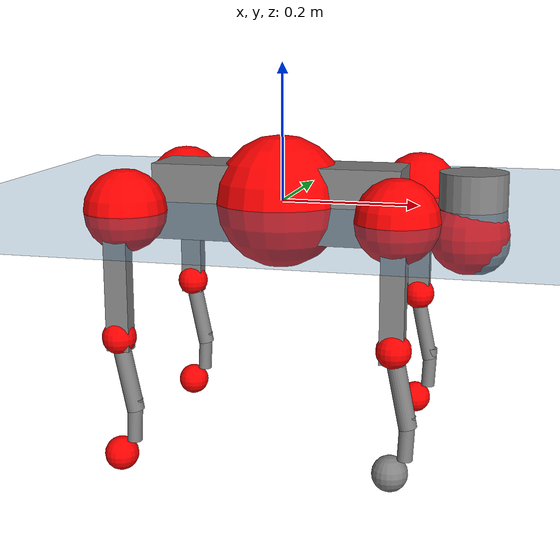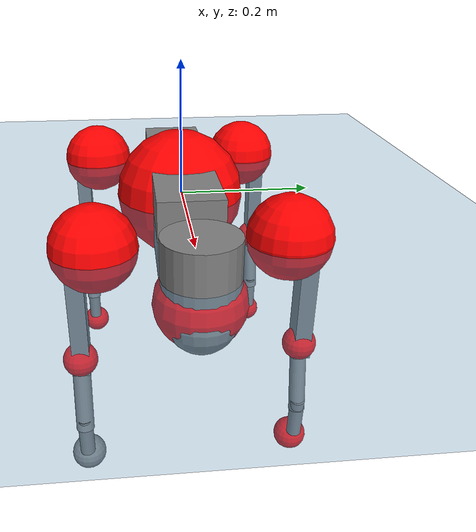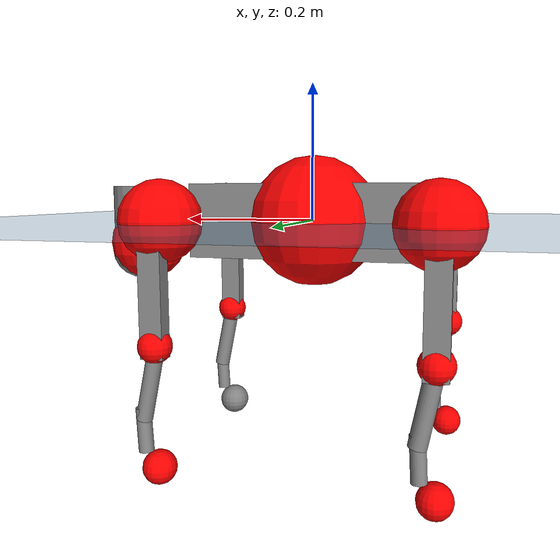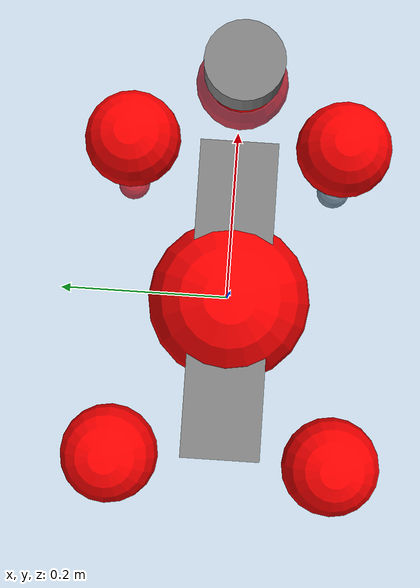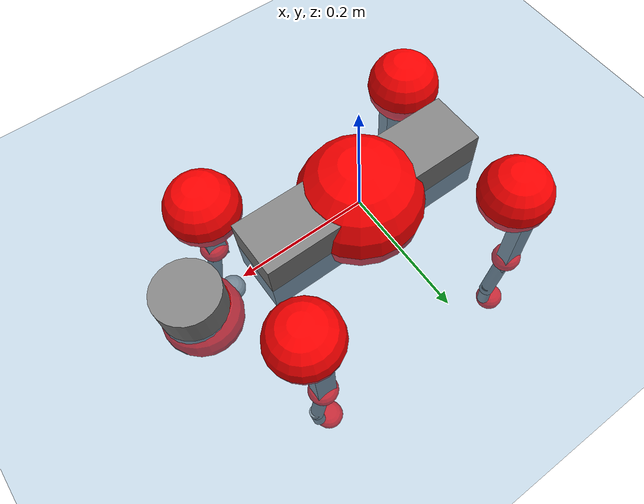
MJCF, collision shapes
<mujoco model="go2">
  <compiler angle="radian" assetdir="assets" balanceinertia="true" inertiafromgeom="false"/>

  <option timestep="0.005" density="1.2" viscosity="2e-05"/>

  <size nkey="1"/>

  <visual>
    <quality shadowsize="8192"/>
    <map shadowclip="0.5"/>
  </visual>

  <default>
    <default class="/">
      <geom contype="0" conaffinity="0" group="1" solref="-1000 -80"/>
      <site size="0.01 0.005 0.005" group="5"/>
      <general forcelimited="true" biastype="affine" gainprm="20" biasprm="0 -20 -0.5"/>
      <default class="go2">
        <joint armature="0.01" damping="0.01" frictionloss="0.2"/>
        <geom condim="1" margin="0.001"/>
        <default class="visual">
          <geom type="mesh" group="2"/>
        </default>
        <default class="collision">
          <geom group="3"/>
          <default class="foot">
            <geom size="0.022 0 0" condim="6" priority="1" friction="0.8 0.02 0.01" solimp="0.015 1 0.022"/>
          </default>
        </default>
        <default class="reward_collision_sphere">
          <geom group="5" rgba="1 0 0 1"/>
        </default>
      </default>
    </default>
  </default>

  <asset>
    <texture type="skybox" colorspace="auto" name="//unnamed_texture_0" builtin="gradient" rgb1="0.95 0.95 0.95" rgb2="0.95 0.95 0.95" width="100" height="600"/>
    <texture type="2d" colorspace="auto" name="texplane" builtin="checker" rgb1="0.345 0.575 0.748" rgb2="0.345 0.575 0.748" markrgb="1 1 1" width="512" height="512"/>
    <material name="MatPlane" class="/" texture="texplane" texuniform="true" texrepeat="2 2" specular="0.9"/>
    <material name="metal" class="/" rgba="0.9 0.95 0.95 1"/>
    <material name="black" class="/" rgba="0 0 0 1"/>
    <material name="white" class="/"/>
    <material name="gray" class="/" rgba="0.671705 0.692426 0.77427 1"/>
    <mesh name="base_0" class="/" file="base_0.obj"/>
    <mesh name="base_1" class="/" file="base_1.obj"/>
    <mesh name="base_2" class="/" file="base_2.obj"/>
    <mesh name="base_3" class="/" file="base_3.obj"/>
    <mesh name="base_4" class="/" file="base_4.obj"/>
    <mesh name="hip_0" class="/" file="hip_0.obj"/>
    <mesh name="hip_1" class="/" file="hip_1.obj"/>
    <mesh name="thigh_0" class="/" file="thigh_0.obj"/>
    <mesh name="thigh_1" class="/" file="thigh_1.obj"/>
    <mesh name="thigh_mirror_0" class="/" file="thigh_mirror_0.obj"/>
    <mesh name="thigh_mirror_1" class="/" file="thigh_mirror_1.obj"/>
    <mesh name="calf_0" class="/" file="calf_0.obj"/>
    <mesh name="calf_1" class="/" file="calf_1.obj"/>
    <mesh name="calf_mirror_0" class="/" file="calf_mirror_0.obj"/>
    <mesh name="calf_mirror_1" class="/" file="calf_mirror_1.obj"/>
    <mesh name="foot" class="/" file="foot.obj"/>
  </asset>

  <worldbody>
    <geom name="floor" class="/" size="100 100 0.125" type="plane" group="0" material="MatPlane"/>
    <light name="toplight_shadow" class="/" pos="0 0 5" dir="0.0990148 0.0990148 -0.990148" type="directional" ambient="0.04 0.04 0.04" diffuse="0.55 0.55 0.55" specular="0.12 0.12 0.12"/>
    <light name="toplight_fill" class="/" pos="0 0 5" dir="0.0990148 0.0990148 -0.990148" type="directional" castshadow="false" ambient="0.04 0.04 0.04" diffuse="0.3 0.3 0.3" specular="0.08 0.08 0.08"/>
    <body name="trunk" childclass="go2" pos="-0.00263948 -0.00234987 -0.000179138" quat="0.999999 -3.20818e-05 0.000195238 0.00134387">
      <inertial pos="0.0180758 0.000120283 -0.00493278" quat="-0.000297609 0.71373 -0.00188154 0.700419" mass="6.25523" diaginertia="0.0977024 0.170914 0.00895259"/>
      <joint name="//unnamed_joint_0" type="free" armature="0" damping="0" frictionloss="0"/>
      <geom name="//unnamed_geom_1" class="visual" material="black" mesh="base_0"/>
      <geom name="//unnamed_geom_2" class="visual" material="black" mesh="base_1"/>
      <geom name="//unnamed_geom_3" class="visual" material="black" mesh="base_2"/>
      <geom name="//unnamed_geom_4" class="visual" material="white" mesh="base_3"/>
      <geom name="//unnamed_geom_5" class="visual" material="gray" mesh="base_4"/>
      <geom name="trunk_1" class="collision" size="0.18277 0.0454252 0.0553847" type="box"/>
      <geom name="trunk_2" class="collision" size="0.0485831 0.0437248" pos="0.279765 0 0.00813553" type="cylinder"/>
      <geom name="trunk_3" class="collision" size="0.0456681" pos="0.287618 0 -0.0488132"/>
      <geom name="//unnamed_geom_9" class="reward_collision_sphere" size="0.0971662"/>
      <geom name="//unnamed_geom_10" class="reward_collision_sphere" size="0.0582997" pos="0.274857 0 -0.0366099"/>
      <site name="imu" pos="-0.0223805 -0.000312568 0.038273" size="0.00971662"/>
      <camera name="track" pos="0 -2.2396 0" quat="0.707107 0.707107 0 0" mode="trackcom"/>
      <camera name="ego_camera" pos="0.306269 0 0.0366099" quat="-0.5 -0.5 0.5 0.5"/>
      <body name="FL_hip" pos="0.187641 0.0503017 0.00304652" quat="0.999999 5.29462e-05 0.00120641 -0.000143215">
        <inertial pos="-0.00776556 0.00133824 -0.00155773" quat="0.497856 0.499203 0.505369 0.497532" mass="0.650396" diaginertia="0.000844404 0.00104888 0.000180185"/>
        <joint name="FL_hip_joint" pos="0 0 0" axis="0.999982 0.000176272 -0.00606871" stiffness="0.00197613" range="-1.04949 0.992387" armature="0.010981" damping="0" frictionloss="0.198779"/>
        <geom name="//unnamed_geom_11" class="visual" material="metal" mesh="hip_0"/>
        <geom name="//unnamed_geom_12" class="visual" material="gray" mesh="hip_1"/>
        <geom name="//unnamed_geom_13" class="collision" size="0.0446964 0.0194332" pos="0 0.089584 0" quat="0.707107 0.707107 0 0" type="cylinder"/>
        <geom name="//unnamed_geom_14" class="reward_collision_sphere" size="0.0582997" pos="0 0.078386 0"/>
        <body name="FL_thigh" pos="-0.00039834 0.106246 0.00288561" quat="1 -8.14504e-05 5.07232e-05 0.000258149">
          <inertial pos="-0.00107902 -0.0254806 -0.0237966" quat="0.829608 0.0847156 -0.0199669 0.55152" mass="1.06773" diaginertia="0.00544371 0.0101737 0.000312475"/>
          <joint name="FL_thigh_joint" pos="0 0 0" axis="-0.00250097 0.999944 -0.0103084" stiffness="0.0108088" range="-1.62172 3.545" armature="0.0110134" damping="0" frictionloss="0.204558"/>
          <geom name="//unnamed_geom_15" class="visual" material="metal" mesh="thigh_0"/>
          <geom name="//unnamed_geom_16" class="visual" material="gray" mesh="thigh_1"/>
          <geom name="//unnamed_geom_17" class="collision" size="0.103482 0.0119029 0.0165182" pos="0 0 -0.0866434" quat="0.707107 0 0.707107 0" type="box"/>
          <body name="FL_calf" pos="0.000228519 -0.00119386 -0.173436" quat="1 -0.000643066 0.000116783 -0.000714103">
            <inertial pos="0.00792161 0.000948633 -0.117392" quat="0.716768 -0.00837266 -0.000104987 0.697261" mass="0.219209" diaginertia="0.0013631 0.00261137 1.84047e-05"/>
            <joint name="FL_calf_joint" pos="0 0 0" axis="-0.00347145 0.999994 -0.000615142" range="-2.70931 -0.892046" armature="0.00893745" damping="0.000911394" frictionloss="0.203226"/>
            <geom name="//unnamed_geom_18" class="visual" material="gray" mesh="calf_0"/>
            <geom name="//unnamed_geom_19" class="visual" material="black" mesh="calf_1"/>
            <geom name="FL_calf0" class="collision" size="0.0116599 0.0582997" pos="0.00785306 0 -0.0488132" quat="0.994493 0 -0.104807 0" type="cylinder"/>
            <geom name="//unnamed_geom_21" class="collision" size="0.0106883 0.031579" pos="0.0196326 0 -0.120406" quat="0.999688 0 0.0249974 0" type="cylinder"/>
            <geom name="//unnamed_geom_22" class="visual" pos="0 0 -0.173287" quat="1 0 0 0" material="black" mesh="foot"/>
            <geom name="FL_foot" class="foot" size="0.017408" pos="-0.00196326 0 -0.173287"/>
            <geom name="//unnamed_geom_24" class="reward_collision_sphere" size="0.0242915"/>
            <geom name="//unnamed_geom_25" class="reward_collision_sphere" size="0.0242915" pos="-0.00196326 0 -0.173287"/>
            <site name="FL_foot" class="foot" pos="-0.00196326 0 -0.173287" size="0.00971662"/>
          </body>
        </body>
      </body>
      <body name="FR_hip" pos="0.191259 -0.0492519 0.000375653" quat="1 1.495e-05 1.07696e-05 -3.66826e-07">
        <inertial pos="-0.00242831 -0.00296957 -0.000227235" quat="0.49858 0.504673 0.498476 0.498241" mass="0.656665" diaginertia="0.000839396 0.00109397 0.000171628"/>
        <joint name="FR_hip_joint" pos="0 0 0" axis="1 8.17995e-05 9.2845e-05" range="-1.01698 1.04535" armature="0.0085124" damping="0.0142996" frictionloss="0.219736"/>
        <geom name="//unnamed_geom_26" class="visual" pos="0 2.66789e-09 1.14431e-07" quat="4.63268e-05 1 0 0" material="metal" mesh="hip_0"/>
        <geom name="//unnamed_geom_27" class="visual" pos="0 4.32497e-09 -2.83033e-07" quat="4.63268e-05 1 0 0" material="gray" mesh="hip_1"/>
        <geom name="//unnamed_geom_28" class="collision" size="0.0446964 0.0194332" pos="0 -0.089584 0" quat="0.707107 0.707107 0 0" type="cylinder"/>
        <geom name="//unnamed_geom_29" class="reward_collision_sphere" size="0.0582997" pos="0 -0.078386 0"/>
        <body name="FR_thigh" pos="0.000750399 -0.105599 0.00317222" quat="0.999999 -0.00132693 0.000155368 -0.000484569">
          <inertial pos="-0.00590426 0.0225806 -0.0258765" quat="0.552355 -0.022035 0.0808466 0.829387" mass="1.02606" diaginertia="0.00543593 0.0102209 0.000302887"/>
          <joint name="FR_thigh_joint" pos="0 0 0" axis="-0.00407203 -0.99999 0.00161442" stiffness="0.00165399" range="-3.47865 1.56444" armature="0.00972897" damping="0.0187481" frictionloss="0.199342"/>
          <geom name="//unnamed_geom_30" class="visual" material="metal" mesh="thigh_mirror_0"/>
          <geom name="//unnamed_geom_31" class="visual" material="gray" mesh="thigh_mirror_1"/>
          <geom name="//unnamed_geom_32" class="collision" size="0.103482 0.0119029 0.0165182" pos="0 0 -0.0866434" quat="0.707107 0 0.707107 0" type="box"/>
          <body name="FR_calf" pos="0.00193349 -0.00154472 -0.172103" quat="1 -0.00010068 7.17253e-05 -0.000136391">
            <inertial pos="0.00748895 0.00102993 -0.114691" quat="0.70514 -0.00798007 -0.000171664 0.709023" mass="0.22668" diaginertia="0.00145346 0.00258375 1.96758e-05"/>
            <joint name="FR_calf_joint" pos="0 0 0" axis="-0.000579402 -0.999945 0.0104851" range="0.834835 2.72409" armature="0.00976668" damping="0.0177224" frictionloss="0.185603"/>
            <geom name="//unnamed_geom_33" class="visual" material="gray" mesh="calf_mirror_0"/>
            <geom name="//unnamed_geom_34" class="visual" material="black" mesh="calf_mirror_1"/>
            <geom name="FR_calf0" class="collision" size="0.0126316 0.0582997" pos="0.00981632 0 -0.0488132" quat="0.995004 0 -0.0998334 0" type="cylinder"/>
            <geom name="//unnamed_geom_36" class="collision" size="0.0106883 0.031579" pos="0.0196326 0 -0.120406" quat="0.999688 0 0.0249974 0" type="cylinder"/>
            <geom name="//unnamed_geom_37" class="visual" pos="0 0 -0.173287" quat="1 0 0 0" material="black" mesh="foot"/>
            <geom name="FR_foot" class="foot" size="0.0250678" pos="-0.00196326 0 -0.173287"/>
            <geom name="//unnamed_geom_39" class="reward_collision_sphere" size="0.0242915"/>
            <geom name="//unnamed_geom_40" class="reward_collision_sphere" size="0.0242915" pos="-0.00196326 0 -0.173287"/>
            <site name="FR_foot" class="foot" pos="-0.00196326 0 -0.173287" size="0.00971662"/>
          </body>
        </body>
      </body>
      <body name="RL_hip" pos="-0.190024 0.0522158 0.00205146" quat="0.999999 -0.000391887 0.000866715 -0.000389085">
        <inertial pos="0.0081695 0.00336015 -0.000999886" quat="0.505451 0.498241 0.496992 0.499273" mass="0.616321" diaginertia="0.000808116 0.00108606 0.000173529"/>
        <joint name="RL_hip_joint" pos="0 0 0" axis="-0.999865 -0.0135188 -0.00937123" stiffness="0.00911417" range="-1.02248 1.02837" armature="0.00980232" damping="0.00811665" frictionloss="0.195229"/>
        <geom name="//unnamed_geom_41" class="visual" pos="-1.46424e-09 0 -2.87024e-07" quat="4.63268e-05 0 1 0" material="metal" mesh="hip_0"/>
        <geom name="//unnamed_geom_42" class="visual" pos="-2.3737e-09 0 -2.54549e-07" quat="4.63268e-05 0 1 0" material="gray" mesh="hip_1"/>
        <geom name="//unnamed_geom_43" class="collision" size="0.0446964 0.0194332" pos="0 0.089584 0" quat="0.707107 0.707107 0 0" type="cylinder"/>
        <geom name="//unnamed_geom_44" class="reward_collision_sphere" size="0.0582997" pos="0 0.078386 0"/>
        <body name="RL_thigh" pos="-0.00233597 0.107557 0.00226144" quat="0.999999 0.000486764 -0.000713095 0.000950375">
          <inertial pos="-0.00389358 -0.0236573 -0.0256359" quat="0.828632 0.0738308 -0.0282443 0.554185" mass="1.01881" diaginertia="0.00536828 0.00992966 0.000311479"/>
          <joint name="RL_thigh_joint" pos="0 0 0" axis="0.0117944 0.999896 -0.00829395" range="-0.505135 4.53725" armature="0.0087546" damping="0" frictionloss="0.196051"/>
          <geom name="//unnamed_geom_45" class="visual" material="metal" mesh="thigh_0"/>
          <geom name="//unnamed_geom_46" class="visual" material="gray" mesh="thigh_1"/>
          <geom name="//unnamed_geom_47" class="collision" size="0.103482 0.0119029 0.0165182" pos="0 0 -0.0866434" quat="0.707107 0 0.707107 0" type="box"/>
          <body name="RL_calf" pos="-0.000161352 -0.00230169 -0.171848" quat="1 3.40253e-05 -9.11003e-05 1.78211e-05">
            <inertial pos="0.00601188 -0.000574684 -0.1134" quat="0.710672 0.000872044 -0.0049835 0.703505" mass="0.2201" diaginertia="0.00136265 0.00259355 1.89061e-05"/>
            <joint name="RL_calf_joint" pos="0 0 0" axis="0.00254989 0.999996 0.00136249" range="-2.70626 -0.833876" armature="0.00947949" damping="0" frictionloss="0.18912"/>
            <geom name="//unnamed_geom_48" class="visual" material="gray" mesh="calf_0"/>
            <geom name="//unnamed_geom_49" class="visual" material="black" mesh="calf_1"/>
            <geom name="RL_calf0" class="collision" size="0.0126316 0.0582997" pos="0.00981632 0 -0.0488132" quat="0.995004 0 -0.0998334 0" type="cylinder"/>
            <geom name="//unnamed_geom_51" class="collision" size="0.0106883 0.031579" pos="0.0196326 0 -0.120406" quat="0.999688 0 0.0249974 0" type="cylinder"/>
            <geom name="//unnamed_geom_52" class="visual" pos="0 0 -0.173287" quat="1 0 0 0" material="black" mesh="foot"/>
            <geom name="RL_foot" class="foot" size="0.0212188" pos="-0.00196326 0 -0.173287"/>
            <geom name="//unnamed_geom_54" class="reward_collision_sphere" size="0.0242915"/>
            <geom name="//unnamed_geom_55" class="reward_collision_sphere" size="0.0242915" pos="-0.00196326 0 -0.173287"/>
            <site name="RL_foot" class="foot" pos="-0.00196326 0 -0.173287" size="0.00971662"/>
          </body>
        </body>
      </body>
      <body name="RR_hip" pos="-0.189085 -0.0542728 0.00101296" quat="0.999999 0.000758184 0.00014388 -0.000992213">
        <inertial pos="0.00532506 0.000656651 -0.000286411" quat="0.509608 0.489587 0.493205 0.5073" mass="0.617942" diaginertia="0.000817125 0.00106843 0.000169379"/>
        <joint name="RR_hip_joint" pos="0 0 0" axis="-0.999971 -0.00545097 0.00532532" stiffness="0.00807733" range="-1.06818 1.04914" armature="0.011146" damping="0.0184905" frictionloss="0.167219"/>
        <geom name="//unnamed_geom_56" class="visual" pos="1.46902e-09 2.66789e-09 -4.01455e-07" quat="2.14617e-09 4.63268e-05 4.63268e-05 -1" material="metal" mesh="hip_0"/>
        <geom name="//unnamed_geom_57" class="visual" pos="2.36187e-09 4.32497e-09 2.84832e-08" quat="2.14617e-09 4.63268e-05 4.63268e-05 -1" material="gray" mesh="hip_1"/>
        <geom name="//unnamed_geom_58" class="collision" size="0.0446964 0.0194332" pos="0 -0.089584 0" quat="0.707107 0.707107 0 0" type="cylinder"/>
        <geom name="//unnamed_geom_59" class="reward_collision_sphere" size="0.0582997" pos="0 -0.078386 0"/>
        <body name="RR_thigh" pos="-0.00143899 -0.107921 -0.00304416" quat="1 0.000556097 0.000538048 6.84176e-05">
          <inertial pos="-0.00323781 0.0240854 -0.0263756" quat="0.552052 -0.0205122 0.0854154 0.82917" mass="1.04399" diaginertia="0.00539491 0.0102901 0.000302304"/>
          <joint name="RR_thigh_joint" pos="0 0 0" axis="-0.000631595 -0.99999 -0.00436225" range="-4.59247 0.562756" armature="0.0103969" damping="0.018597" frictionloss="0.202125"/>
          <geom name="//unnamed_geom_60" class="visual" material="metal" mesh="thigh_mirror_0"/>
          <geom name="//unnamed_geom_61" class="visual" material="gray" mesh="thigh_mirror_1"/>
          <geom name="//unnamed_geom_62" class="collision" size="0.103482 0.0119029 0.0165182" pos="0 0 -0.0866434" quat="0.707107 0 0.707107 0" type="box"/>
          <body name="RR_calf" pos="-0.00227263 0.00142548 -0.172787" quat="1 0.000325324 0.000127506 0.000540817">
            <inertial pos="0.00831479 0.000963491 -0.113842" quat="0.703005 -0.00428512 0.00202366 0.711169" mass="0.220838" diaginertia="0.0013387 0.00241755 1.88317e-05"/>
            <joint name="RR_calf_joint" pos="0 0 0" axis="-0.00433597 -0.999946 0.00939297" range="0.887645 2.76907" armature="0.00830759" damping="0.00983672" frictionloss="0.186707"/>
            <geom name="//unnamed_geom_63" class="visual" material="gray" mesh="calf_mirror_0"/>
            <geom name="//unnamed_geom_64" class="visual" material="black" mesh="calf_mirror_1"/>
            <geom name="RR_calf0" class="collision" size="0.0126316 0.0582997" pos="0.00981632 0 -0.0488132" quat="0.995004 0 -0.0998334 0" type="cylinder"/>
            <geom name="//unnamed_geom_66" class="collision" size="0.0106883 0.031579" pos="0.0196326 0 -0.120406" quat="0.999688 0 0.0249974 0" type="cylinder"/>
            <geom name="//unnamed_geom_67" class="visual" pos="0 0 -0.173287" quat="1 0 0 0" material="black" mesh="foot"/>
            <geom name="RR_foot" class="foot" size="0.0232221" pos="-0.00196326 0 -0.173287"/>
            <geom name="//unnamed_geom_69" class="reward_collision_sphere" size="0.0242915"/>
            <geom name="//unnamed_geom_70" class="reward_collision_sphere" size="0.0242915" pos="-0.00196326 0 -0.173287"/>
            <site name="RR_foot" class="foot" pos="-0.00196326 0 -0.173287" size="0.00971662"/>
          </body>
        </body>
      </body>
    </body>
  </worldbody>

  <contact>
    <pair class="/" geom1="floor" geom2="FL_foot" name="//unnamed_contact_0"/>
    <pair class="/" geom1="floor" geom2="FR_foot" name="//unnamed_contact_1"/>
    <pair class="/" geom1="floor" geom2="RL_foot" name="//unnamed_contact_2"/>
    <pair class="/" geom1="floor" geom2="RR_foot" name="//unnamed_contact_3"/>
  </contact>

  <actuator>
    <general name="FL_hip" class="/" joint="FL_hip_joint" forcerange="-23.0736 23.0736" gainprm="19.5874" biasprm="0 -19.5874 -0.488816"/>
    <general name="FL_thigh" class="/" joint="FL_thigh_joint" forcerange="-21.9835 21.9835" gainprm="19.5874" biasprm="0 -19.5874 -0.488816"/>
    <general name="FL_calf" class="/" joint="FL_calf_joint" forcerange="-43.5746 43.5746" gainprm="19.5874" biasprm="0 -19.5874 -0.488816"/>
    <general name="FR_hip" class="/" joint="FR_hip_joint" forcerange="-25.0312 25.0312" gainprm="19.5874" biasprm="0 -19.5874 -0.488816"/>
    <general name="FR_thigh" class="/" joint="FR_thigh_joint" forcerange="-22.9858 22.9858" gainprm="19.5874" biasprm="0 -19.5874 -0.488816"/>
    <general name="FR_calf" class="/" joint="FR_calf_joint" forcerange="-39.617 39.617" gainprm="19.5874" biasprm="0 -19.5874 -0.488816"/>
    <general name="RL_hip" class="/" joint="RL_hip_joint" forcerange="-23.5691 23.5691" gainprm="19.5874" biasprm="0 -19.5874 -0.488816"/>
    <general name="RL_thigh" class="/" joint="RL_thigh_joint" forcerange="-23.4883 23.4883" gainprm="19.5874" biasprm="0 -19.5874 -0.488816"/>
    <general name="RL_calf" class="/" joint="RL_calf_joint" forcerange="-42.7408 42.7408" gainprm="19.5874" biasprm="0 -19.5874 -0.488816"/>
    <general name="RR_hip" class="/" joint="RR_hip_joint" forcerange="-22.3206 22.3206" gainprm="19.5874" biasprm="0 -19.5874 -0.488816"/>
    <general name="RR_thigh" class="/" joint="RR_thigh_joint" forcerange="-23.4848 23.4848" gainprm="19.5874" biasprm="0 -19.5874 -0.488816"/>
    <general name="RR_calf" class="/" joint="RR_calf_joint" forcerange="-48.7965 48.7965" gainprm="19.5874" biasprm="0 -19.5874 -0.488816"/>
  </actuator>

  <sensor>
    <gyro site="imu" name="imu_angular_velocity"/>
    <velocimeter site="imu" name="imu_linear_velocity"/>
    <framelinvel objtype="site" objname="FL_foot" name="FL_foot_global_linear_velocity"/>
    <framelinvel objtype="site" objname="FR_foot" name="FR_foot_global_linear_velocity"/>
    <framelinvel objtype="site" objname="RL_foot" name="RL_foot_global_linear_velocity"/>
    <framelinvel objtype="site" objname="RR_foot" name="RR_foot_global_linear_velocity"/>
  </sensor>

  <keyframe>
    <key name="home" qpos="0 0 0.325 1 0 0 0 0.1 0.8 -1.5 -0.1 -0.8 1.5 -0.1 0.8 -1.5 0.1 -0.8 1.5"/>
  </keyframe>
</mujoco>
